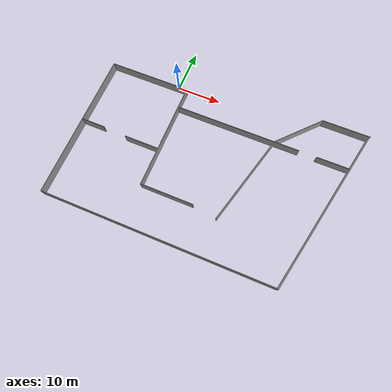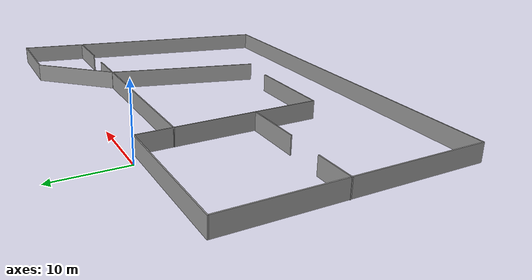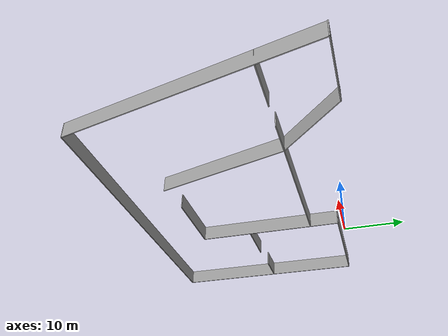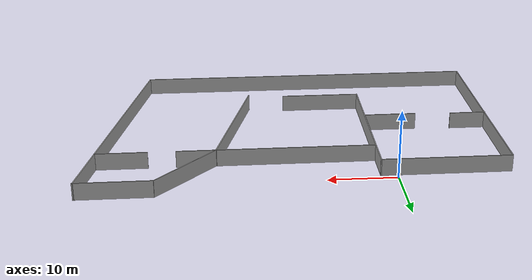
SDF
<?xml version='1.0'?>
<sdf version='1.7'>
  <model name='maailm.world'>
    <pose>14.0043 -15.6961 0 0 -0 0</pose>
    <link name='Wall_1'>
      <collision name='Wall_1_Collision'>
        <geometry>
          <box>
            <size>5 0.15 2.5</size>
          </box>
        </geometry>
        <pose>0 0 1.25 0 -0 0</pose>
      </collision>
      <visual name='Wall_1_Visual'>
        <pose>0 0 1.25 0 -0 0</pose>
        <geometry>
          <box>
            <size>5 0.15 2.5</size>
          </box>
        </geometry>
        <material>
          <script>
            <uri>file://media/materials/scripts/gazebo.material</uri>
            <name>Gazebo/Grey</name>
          </script>
          <ambient>1 1 1 1</ambient>
        </material>
        <meta>
          <layer>0</layer>
        </meta>
      </visual>
      <pose>-11.6443 12.3311 0 0 -0 1.5708</pose>
    </link>
    <link name='Wall_11'>
      <collision name='Wall_11_Collision'>
        <geometry>
          <box>
            <size>21.25 0.15 2.5</size>
          </box>
        </geometry>
        <pose>0 0 1.25 0 -0 0</pose>
      </collision>
      <visual name='Wall_11_Visual'>
        <pose>0 0 1.25 0 -0 0</pose>
        <geometry>
          <box>
            <size>21.25 0.15 2.5</size>
          </box>
        </geometry>
        <material>
          <script>
            <uri>file://media/materials/scripts/gazebo.material</uri>
            <name>Gazebo/Grey</name>
          </script>
          <ambient>1 1 1 1</ambient>
        </material>
        <meta>
          <layer>0</layer>
        </meta>
      </visual>
      <pose>8.47517 -0.284454 0 0 -0 -1.8326</pose>
    </link>
    <link name='Wall_13'>
      <collision name='Wall_13_Collision'>
        <geometry>
          <box>
            <size>5.75 0.15 2.5</size>
          </box>
        </geometry>
        <pose>0 0 1.25 0 -0 0</pose>
      </collision>
      <visual name='Wall_13_Visual'>
        <pose>0 0 1.25 0 -0 0</pose>
        <geometry>
          <box>
            <size>5.75 0.15 2.5</size>
          </box>
        </geometry>
        <material>
          <script>
            <uri>file://media/materials/scripts/gazebo.material</uri>
            <name>Gazebo/Grey</name>
          </script>
          <ambient>1 1 1 1</ambient>
        </material>
        <meta>
          <layer>0</layer>
        </meta>
      </visual>
      <pose>14.0057 9.90606 0 0 -0 0</pose>
    </link>
    <link name='Wall_15'>
      <collision name='Wall_15_Collision'>
        <geometry>
          <box>
            <size>7.5 0.15 2.5</size>
          </box>
        </geometry>
        <pose>0 0 1.25 0 -0 0</pose>
      </collision>
      <visual name='Wall_15_Visual'>
        <pose>0 0 1.25 0 -0 0</pose>
        <geometry>
          <box>
            <size>7.5 0.15 2.5</size>
          </box>
        </geometry>
        <material>
          <script>
            <uri>file://media/materials/scripts/gazebo.material</uri>
            <name>Gazebo/Grey</name>
          </script>
          <ambient>1 1 1 1</ambient>
        </material>
        <meta>
          <layer>0</layer>
        </meta>
      </visual>
      <pose>24.5628 9.90619 0 0 -0 0</pose>
    </link>
    <link name='Wall_17'>
      <collision name='Wall_17_Collision'>
        <geometry>
          <box>
            <size>19.75 0.15 2.5</size>
          </box>
        </geometry>
        <pose>0 0 1.25 0 -0 0</pose>
      </collision>
      <visual name='Wall_17_Visual'>
        <pose>0 0 1.25 0 -0 0</pose>
        <geometry>
          <box>
            <size>19.75 0.15 2.5</size>
          </box>
        </geometry>
        <material>
          <script>
            <uri>file://media/materials/scripts/gazebo.material</uri>
            <name>Gazebo/Grey</name>
          </script>
          <ambient>1 1 1 1</ambient>
        </material>
        <meta>
          <layer>0</layer>
        </meta>
      </visual>
      <pose>-11.6443 0.106063 0 0 -0 -1.5708</pose>
    </link>
    <link name='Wall_18'>
      <collision name='Wall_18_Collision'>
        <geometry>
          <box>
            <size>12 0.15 2.5</size>
          </box>
        </geometry>
        <pose>0 0 1.25 0 -0 0</pose>
      </collision>
      <visual name='Wall_18_Visual'>
        <pose>0 0 1.25 0 -0 0</pose>
        <geometry>
          <box>
            <size>12 0.15 2.5</size>
          </box>
        </geometry>
        <material>
          <script>
            <uri>file://media/materials/scripts/gazebo.material</uri>
            <name>Gazebo/Grey</name>
          </script>
          <ambient>1 1 1 1</ambient>
        </material>
        <meta>
          <layer>0</layer>
        </meta>
      </visual>
      <pose>-5.71929 -9.69394 0 0 -0 0</pose>
    </link>
    <link name='Wall_2'>
      <collision name='Wall_2_Collision'>
        <geometry>
          <box>
            <size>18.75 0.15 2.5</size>
          </box>
        </geometry>
        <pose>0 0 1.25 0 -0 0</pose>
      </collision>
      <visual name='Wall_2_Visual'>
        <pose>0 0 1.25 0 -0 0</pose>
        <geometry>
          <box>
            <size>18.75 0.15 2.5</size>
          </box>
        </geometry>
        <material>
          <script>
            <uri>file://media/materials/scripts/gazebo.material</uri>
            <name>Gazebo/Grey</name>
          </script>
          <ambient>1 1 1 1</ambient>
        </material>
        <meta>
          <layer>0</layer>
        </meta>
      </visual>
      <pose>-20.9443 14.7561 0 0 -0 3.14159</pose>
    </link>
    <link name='Wall_20'>
      <collision name='Wall_20_Collision'>
        <geometry>
          <box>
            <size>7.75 0.15 2.5</size>
          </box>
        </geometry>
        <pose>0 0 1.25 0 -0 0</pose>
      </collision>
      <visual name='Wall_20_Visual'>
        <pose>0 0 1.25 0 -0 0</pose>
        <geometry>
          <box>
            <size>7.75 0.15 2.5</size>
          </box>
        </geometry>
        <material>
          <script>
            <uri>file://media/materials/scripts/gazebo.material</uri>
            <name>Gazebo/Grey</name>
          </script>
          <ambient>1 1 1 1</ambient>
        </material>
        <meta>
          <layer>0</layer>
        </meta>
      </visual>
      <pose>-15.645 -1.04577 0 0 -0 3.14159</pose>
    </link>
    <link name='Wall_22'>
      <collision name='Wall_22_Collision'>
        <geometry>
          <box>
            <size>5.5 0.15 2.5</size>
          </box>
        </geometry>
        <pose>0 0 1.25 0 -0 0</pose>
      </collision>
      <visual name='Wall_22_Visual'>
        <pose>0 0 1.25 0 -0 0</pose>
        <geometry>
          <box>
            <size>5.5 0.15 2.5</size>
          </box>
        </geometry>
        <material>
          <script>
            <uri>file://media/materials/scripts/gazebo.material</uri>
            <name>Gazebo/Grey</name>
          </script>
          <ambient>1 1 1 1</ambient>
        </material>
        <meta>
          <layer>0</layer>
        </meta>
      </visual>
      <pose>-27.6284 -0.79966 0 0 -0 0</pose>
    </link>
    <link name='Wall_3'>
      <collision name='Wall_3_Collision'>
        <geometry>
          <box>
            <size>33.75 0.15 2.5</size>
          </box>
        </geometry>
        <pose>0 0 1.25 0 -0 0</pose>
      </collision>
      <visual name='Wall_3_Visual'>
        <pose>0 0 1.25 0 -0 0</pose>
        <geometry>
          <box>
            <size>33.75 0.15 2.5</size>
          </box>
        </geometry>
        <material>
          <script>
            <uri>file://media/materials/scripts/gazebo.material</uri>
            <name>Gazebo/Grey</name>
          </script>
          <ambient>1 1 1 1</ambient>
        </material>
        <meta>
          <layer>0</layer>
        </meta>
      </visual>
      <pose>-30.2443 -2.04394 0 0 -0 -1.5708</pose>
    </link>
    <link name='Wall_4'>
      <collision name='Wall_4_Collision'>
        <geometry>
          <box>
            <size>52.25 0.15 2.5</size>
          </box>
        </geometry>
        <pose>0 0 1.25 0 -0 0</pose>
      </collision>
      <visual name='Wall_4_Visual'>
        <pose>0 0 1.25 0 -0 0</pose>
        <geometry>
          <box>
            <size>52.25 0.15 2.5</size>
          </box>
        </geometry>
        <material>
          <script>
            <uri>file://media/materials/scripts/gazebo.material</uri>
            <name>Gazebo/Grey</name>
          </script>
          <ambient>1 1 1 1</ambient>
        </material>
        <meta>
          <layer>0</layer>
        </meta>
      </visual>
      <pose>-4.19429 -18.8439 0 0 -0 0</pose>
    </link>
    <link name='Wall_5'>
      <collision name='Wall_5_Collision'>
        <geometry>
          <box>
            <size>38.7394 0.15 2.5</size>
          </box>
        </geometry>
        <pose>0 0 1.25 0 -0 0</pose>
      </collision>
      <visual name='Wall_5_Visual'>
        <pose>0 0 1.25 0 -0 0</pose>
        <geometry>
          <box>
            <size>38.7394 0.15 2.5</size>
          </box>
        </geometry>
        <material>
          <script>
            <uri>file://media/materials/scripts/gazebo.material</uri>
            <name>Gazebo/Grey</name>
          </script>
          <ambient>1 1 1 1</ambient>
        </material>
        <meta>
          <layer>0</layer>
        </meta>
      </visual>
      <pose>26.0393 -0.008266 0 0 -0 1.35223</pose>
    </link>
    <link name='Wall_7'>
      <collision name='Wall_7_Collision'>
        <geometry>
          <box>
            <size>23 0.15 2.5</size>
          </box>
        </geometry>
        <pose>0 0 1.25 0 -0 0</pose>
      </collision>
      <visual name='Wall_7_Visual'>
        <pose>0 0 1.25 0 -0 0</pose>
        <geometry>
          <box>
            <size>23 0.15 2.5</size>
          </box>
        </geometry>
        <material>
          <script>
            <uri>file://media/materials/scripts/gazebo.material</uri>
            <name>Gazebo/Grey</name>
          </script>
          <ambient>1 1 1 1</ambient>
        </material>
        <meta>
          <layer>0</layer>
        </meta>
      </visual>
      <pose>-0.219294 9.90606 0 0 -0 0</pose>
    </link>
    <link name='Wall_8'>
      <collision name='Wall_8_Collision'>
        <geometry>
          <box>
            <size>12.3812 0.15 2.5</size>
          </box>
        </geometry>
        <pose>0 0 1.25 0 -0 0</pose>
      </collision>
      <visual name='Wall_8_Visual'>
        <pose>0 0 1.25 0 -0 0</pose>
        <geometry>
          <box>
            <size>12.3812 0.15 2.5</size>
          </box>
        </geometry>
        <material>
          <script>
            <uri>file://media/materials/scripts/gazebo.material</uri>
            <name>Gazebo/Grey</name>
          </script>
          <ambient>1 1 1 1</ambient>
        </material>
        <meta>
          <layer>0</layer>
        </meta>
      </visual>
      <pose>15.3893 14.3667 0 0 -0 0.817437</pose>
    </link>
    <link name='Wall_9'>
      <collision name='Wall_9_Collision'>
        <geometry>
          <box>
            <size>10.8 0.15 2.5</size>
          </box>
        </geometry>
        <pose>0 0 1.25 0 -0 0</pose>
      </collision>
      <visual name='Wall_9_Visual'>
        <pose>0 0 1.25 0 -0 0</pose>
        <geometry>
          <box>
            <size>10.8 0.15 2.5</size>
          </box>
        </geometry>
        <material>
          <script>
            <uri>file://media/materials/scripts/gazebo.material</uri>
            <name>Gazebo/Grey</name>
          </script>
          <ambient>1 1 1 1</ambient>
        </material>
        <meta>
          <layer>0</layer>
        </meta>
      </visual>
      <pose>24.9784 18.8274 0 0 -0 0</pose>
    </link>
    <static>1</static>
  </model>
</sdf>
